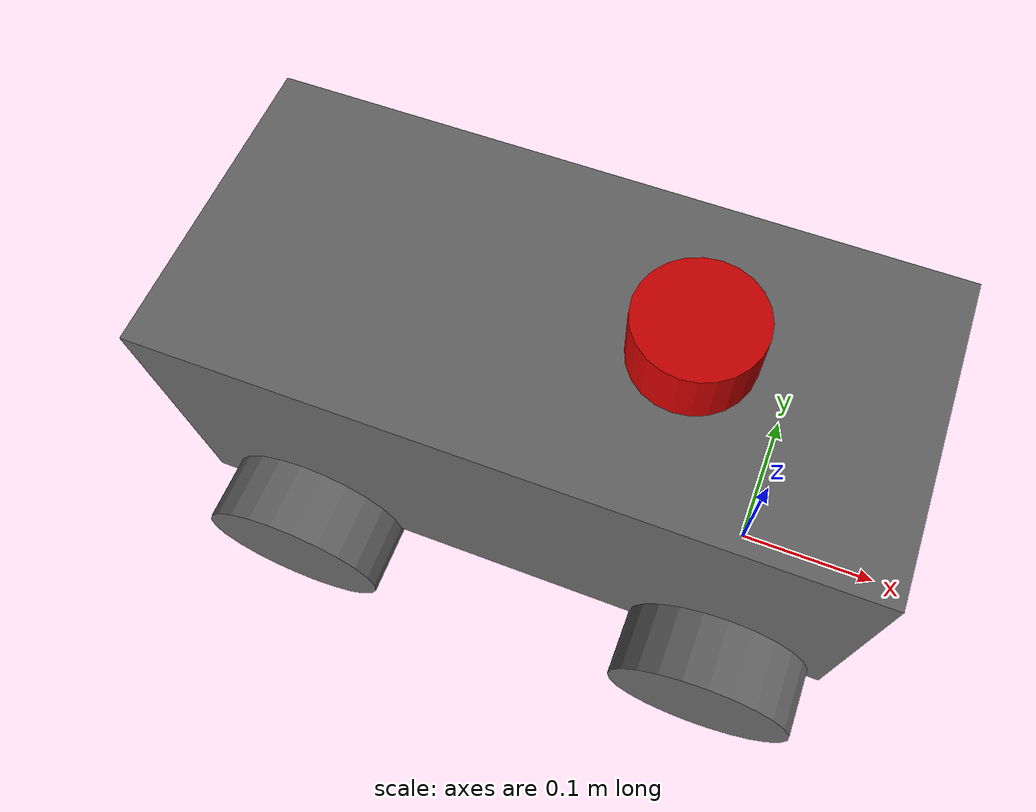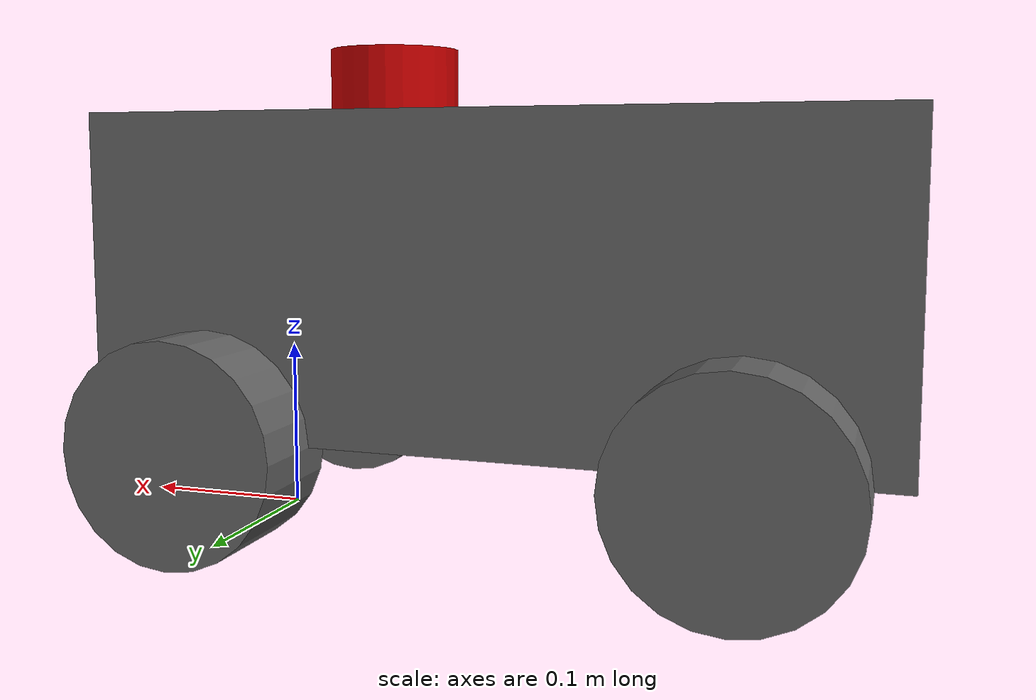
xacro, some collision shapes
<?xml version="1.0"?>
<robot name="bearcar" xmlns:xacro="http://ros.org/wiki/xacro">

      <xacro:include filename="bearcar_core_max.xacro"/>
      <xacro:include filename="bearcar_d455.xacro"/>
      <xacro:include filename="bearcar_t265.xacro"/>
      <xacro:include filename="bearcar_lidar_max.xacro"/>

</robot>

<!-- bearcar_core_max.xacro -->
<robot xmlns:xacro="http://www.ros.org/wiki/xacro">

  <material name="black">
      <color rgba="0.0 0.0 0.0 1.0"/>
  </material>

  <material name="dark">
    <color rgba="0.3 0.3 0.3 1.0"/>
  </material>

  <material name="light_black">
    <color rgba="0.4 0.4 0.4 1.0"/>
  </material>

  <material name="blue">
    <color rgba="0.0 0.0 0.8 1.0"/>
  </material>

  <material name="green">
    <color rgba="0.0 0.8 0.0 1.0"/>
  </material>

  <material name="grey">
    <color rgba="0.5 0.5 0.5 1.0"/>
  </material>

  <material name="orange">
    <color rgba="1.0 0.4235 0.0392 1.0"/>
  </material>

  <material name="brown">
    <color rgba="0.8706 0.8118 0.7647 1.0"/>
  </material>

  <material name="red">
    <color rgba="0.8 0.0 0.0 1.0"/>
  </material>

  <material name="white">
    <color rgba="1.0 1.0 1.0 1.0"/>
  </material>

  <material name="aluminum">
    <color rgba="0.5 0.5 0.5 1"/>
  </material>

  <material name="plastic">
    <color rgba="0.1 0.1 0.1 1"/>
  </material>

  <!-- BASE_FOOTPRINT LINK -->
  <link name="base_footprint"/>

  <joint name="base_joint" type="fixed">
    <parent link="base_footprint"/>
    <child link="base_link" />
    <origin xyz="0 0 0.061" rpy="0 0 0"/>
  </joint>

  <!-- BASE LINK -->
  <link name="base_link">
    <visual>
      <origin xyz="-0.15 0 0.0895" rpy="0 0 0"/>
      <geometry>
        <box size="0.44 0.202 0.179"/>
      </geometry>
      <material name="light_black"/>
    </visual>
  </link>

  <!-- BACK WHEEL LEFT LINK -->
  <joint name="left_back_wheel_joint" type="continuous">
    <parent link="base_link"/>
    <child link="left_back_wheel"/>
    <origin xyz="0 0.114 0" rpy="-${pi/2} 0 0"/>
    <axis xyz ="0 0 -1"/>
  </joint>

  <link name="left_back_wheel">
    <visual>
      <origin rpy="0 0 0" xyz="0 0 0"/>
      <geometry>
        <cylinder radius="0.061" length="0.062"/>
      </geometry>
      <material name="light_black"/>
    </visual>
  </link>

  <!-- BACK WHEEL RIGHT LINK -->
  <joint name="right_back_wheel_joint" type="continuous">
    <parent link="base_link"/>
    <child link="right_back_wheel"/>
    <origin xyz="0 -0.114 0" rpy="${pi/2} 0 0"/>
    <axis xyz ="0 0 1"/>
  </joint>

  <link name="right_back_wheel">
    <visual>
      <origin rpy="0 0 0" xyz="0 0 0"/>
      <geometry>
        <cylinder radius="0.061" length="0.062"/>
      </geometry>
      <material name="light_black"/>
    </visual>
  </link>

  <!-- CASTER LEFT LINK -->
  <joint name="caster_wheel_left_joint" type="fixed">
    <parent link="base_link"/>
    <child link="caster_wheel_left_link"/>
    <origin xyz="-0.29 0.114 0" rpy="-${pi/2} 0 0"/>
  </joint>

  <link name="caster_wheel_left_link">
    <visual>
      <origin rpy="0 0 0" xyz="0 0 0"/>
      <geometry>
        <cylinder radius="0.061" length="0.062"/>
      </geometry>
      <material name="light_black"/>
    </visual>
  </link>

  <!-- CASTER RIGHT LINK -->
  <joint name="caster_wheel_right_joint" type="fixed">
    <parent link="base_link"/>
    <child link="caster_wheel_right_link"/>
    <origin xyz="-0.29 -0.114 0" rpy="${pi/2} 0 0"/>
  </joint>

  <link name="caster_wheel_right_link">
    <visual>
      <origin rpy="0 0 0" xyz="0 0 0"/>
      <geometry>
        <cylinder radius="0.061" length="0.062"/>
      </geometry>
      <material name="light_black"/>
    </visual>
  </link>

</robot>

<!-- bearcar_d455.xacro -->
<robot xmlns:xacro="http://www.ros.org/wiki/xacro">

  <link name="D455_base_frame">
    <visual>
      <geometry>
        <box size="0.01 0.08 0.02"/>
      </geometry>
      <material name="blue"/>
    </visual>
  </link>

  <joint name="base_of_D455" type="fixed">
    <parent link="base_link"/>
    <child link="D455_base_frame"/>
    <origin xyz="-0.29 0 0.119"/>
  </joint>

  <!-- camera body, with origin at bottom screw mount -->
  <joint name="D455_joint" type="fixed">
    <origin rpy="0 0 0" xyz="0 0 0"/>
    <parent link="D455_base_frame"/>
    <child link="D455_bottom_screw_frame"/>
  </joint>

  <link name="D455_bottom_screw_frame"/>

  <joint name="D455_link_joint" type="fixed">
    <origin rpy="0 0 0" xyz="0.011150000000000002 0.0475 0.0145"/>
    <parent link="D455_bottom_screw_frame"/>
    <child link="D455_link"/>
  </joint>

  <link name="D455_link">
    <visual>
      <!-- the mesh origin is at front plate in between the two infrared camera axes -->
      <origin rpy="1.5707963267948966 0 1.5707963267948966" xyz="0.0046500000000000005 -0.0475 0"/>
      <geometry>
        <mesh filename="package://bearcar_description/meshes/d455.stl" scale="0.001 0.001 0.001"/>
      </geometry>
      <material name="aluminum"/>
    </visual>
    <collision>
      <origin rpy="0 0 0" xyz="-0.00845 -0.0475 0"/>
      <geometry>
        <box size="0.026 0.124 0.029"/>
      </geometry>
    </collision>
    <inertial>
      <!-- The following are not reliable values, and should not be used for modeling -->
      <mass value="0.072"/>
      <origin xyz="0 0 0"/>
      <inertia ixx="0.003881243" ixy="0.0" ixz="0.0" iyy="0.000498940" iyz="0.0" izz="0.003879257"/>
    </inertial>
  </link>

  <!-- camera depth joints and links -->
  <joint name="D455_depth_joint" type="fixed">
    <origin rpy="0 0 0" xyz="0 0 0"/>
    <parent link="D455_link"/>
    <child link="D455_depth_frame"/>
  </joint>

  <link name="D455_depth_frame"/>

  <joint name="D455_depth_optical_joint" type="fixed">
    <origin rpy="-1.5707963267948966 0 -1.5707963267948966" xyz="0 0 0"/>
    <parent link="D455_depth_frame"/>
    <child link="D455_depth_optical_frame"/>
  </joint>

  <link name="D455_depth_optical_frame"/>
  <!-- camera left IR joints and links -->
  <joint name="D455_infra1_joint" type="fixed">
    <origin rpy="0 0 0" xyz="0 0.0 0"/>
    <parent link="D455_link"/>
    <child link="D455_infra1_frame"/>
  </joint>

  <link name="D455_infra1_frame"/>
  <joint name="D455_infra1_optical_joint" type="fixed">
    <origin rpy="-1.5707963267948966 0 -1.5707963267948966" xyz="0 0 0"/>
    <parent link="D455_infra1_frame"/>
    <child link="D455_infra1_optical_frame"/>
  </joint>

  <link name="D455_infra1_optical_frame"/>
  <!-- camera right IR joints and links -->
  <joint name="D455_infra2_joint" type="fixed">
    <origin rpy="0 0 0" xyz="0 -0.095 0"/>
    <parent link="D455_link"/>
    <child link="D455_infra2_frame"/>
  </joint>

  <link name="D455_infra2_frame"/>
  <joint name="D455_infra2_optical_joint" type="fixed">
    <origin rpy="-1.5707963267948966 0 -1.5707963267948966" xyz="0 0 0"/>
    <parent link="D455_infra2_frame"/>
    <child link="D455_infra2_optical_frame"/>
  </joint>

  <link name="D455_infra2_optical_frame"/>
  <!-- camera color joints and links -->
  <joint name="D455_color_joint" type="fixed">
    <origin rpy="0 0 0" xyz="0 -0.059 0"/>
    <parent link="D455_link"/>
    <child link="D455_color_frame"/>
  </joint>

  <link name="D455_color_frame"/>
  <joint name="D455_color_optical_joint" type="fixed">
    <origin rpy="-1.5707963267948966 0 -1.5707963267948966" xyz="0 0 0"/>
    <parent link="D455_color_frame"/>
    <child link="D455_color_optical_frame"/>
  </joint>

  <link name="D455_color_optical_frame"/>
  <link name="D455_accel_frame"/>
  <link name="D455_accel_optical_frame"/>
  <link name="D455_gyro_frame"/>
  <link name="D455_gyro_optical_frame"/>
  <link name="D455_imu_optical_frame"/>
  <joint name="D455_accel_joint" type="fixed">
    <origin rpy="0 0 0" xyz="-0.01602 -0.03022 0.0074"/>
    <parent link="D455_link"/>
    <child link="D455_accel_frame"/>
  </joint>

  <joint name="D455_accel_optical_joint" type="fixed">
    <origin rpy="-1.5707963267948966 0 -1.5707963267948966" xyz="0 0 0"/>
    <parent link="D455_accel_frame"/>
    <child link="D455_accel_optical_frame"/>
  </joint>

  <joint name="D455_gyro_joint" type="fixed">
    <origin rpy="0 0 0" xyz="-0.01602 -0.03022 0.0074"/>
    <parent link="D455_link"/>
    <child link="D455_gyro_frame"/>
  </joint>

  <joint name="D455_gyro_optical_joint" type="fixed">
    <origin rpy="-1.5707963267948966 0 -1.5707963267948966" xyz="0 0 0"/>
    <parent link="D455_gyro_frame"/>
    <child link="D455_gyro_optical_frame"/>
  </joint>

  <joint name="D455_imu_optical_joint" type="fixed">
    <origin rpy="0 0 0" xyz="0 0 0"/>
    <parent link="D455_gyro_optical_frame"/>
    <child link="D455_imu_optical_frame"/>
  </joint>

</robot>

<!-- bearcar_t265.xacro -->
<robot xmlns:xacro="http://www.ros.org/wiki/xacro">

  <link name="T265_pose_frame">
    <visual>
      <geometry>
        <box size="0.01 0.08 0.02"/>
      </geometry>
      <material name="blue"/>
    </visual>
  </link>

  <joint name="base_of_T265" type="fixed">
    <parent link="base_link"/>
    <child link="T265_pose_frame"/>
    <origin xyz="-0.29 0 0.13"/>
  </joint>

</robot>

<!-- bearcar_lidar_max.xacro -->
<robot xmlns:xacro="http://www.ros.org/wiki/xacro">

  <link name="lidar">
    <visual>
      <geometry>
        <cylinder radius="0.0375" length="0.04"/>
      </geometry>
      <material name="red"/>
    </visual>
  </link>

  <joint name="base_of_lidar" type="fixed">
    <parent link="base_link"/>
    <child link="lidar"/>
    <origin xyz="-0.07 0 0.1975"/>
  </joint>

</robot>
